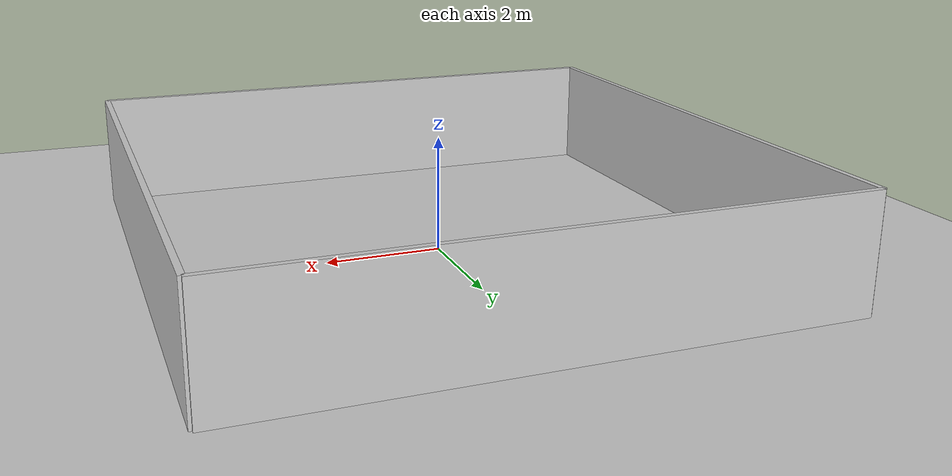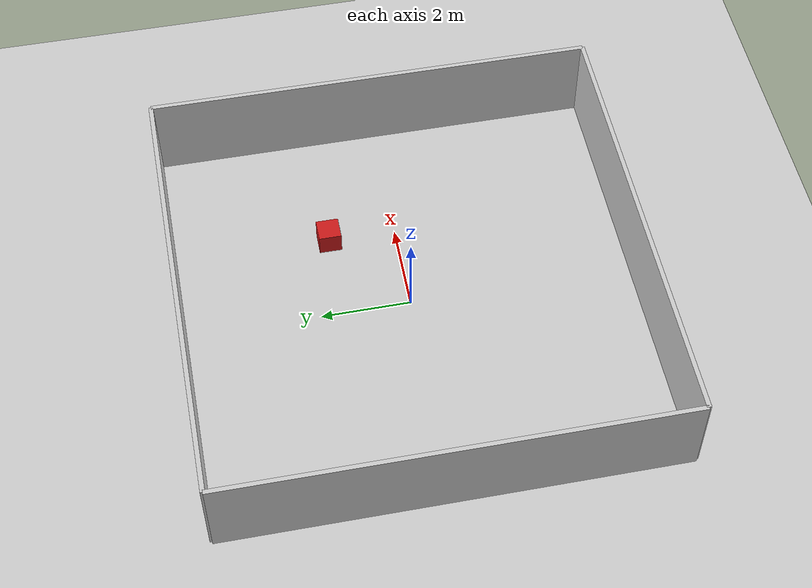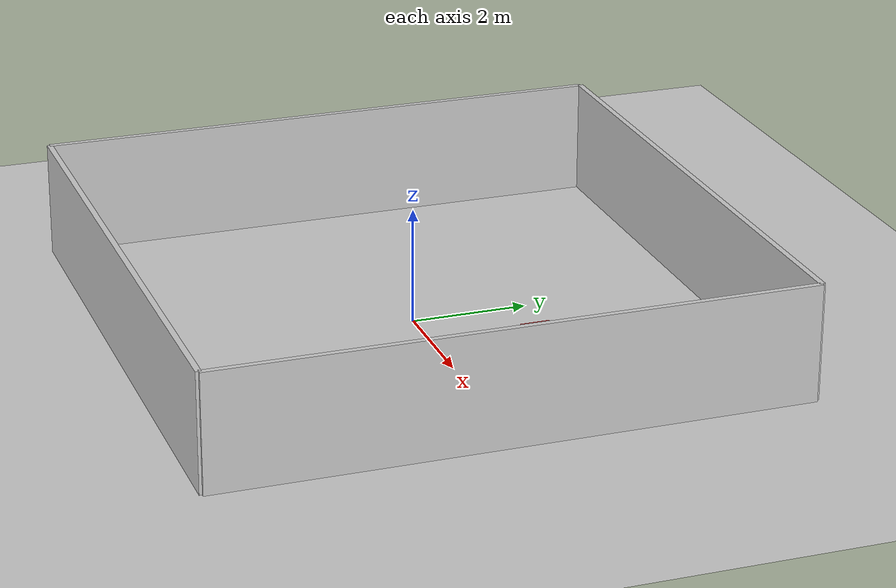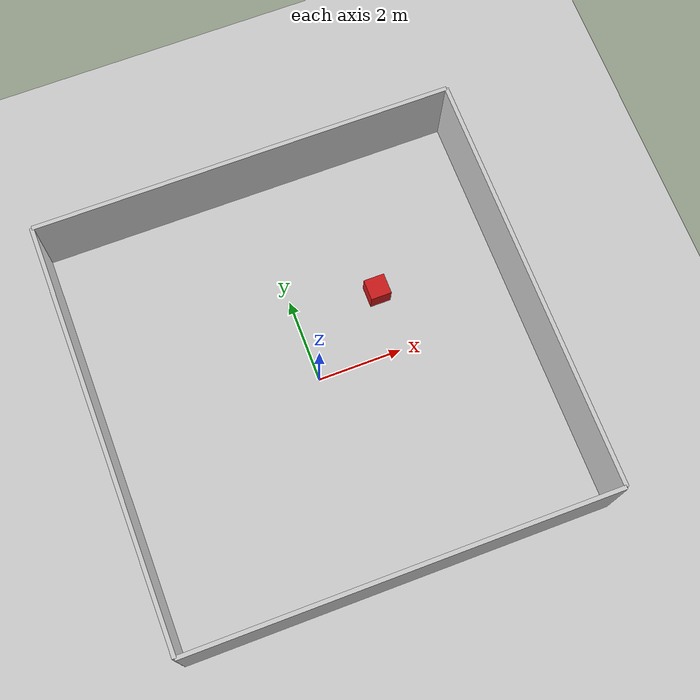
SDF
<?xml version="1.0" ?>
<sdf version="1.6">
  <world name="langnav_room">

    <!-- Physics -->
    <physics type="ode">
      <real_time_update_rate>1000.0</real_time_update_rate>
      <max_step_size>0.001</max_step_size>
      <real_time_factor>1</real_time_factor>
    </physics>

    <!-- Lighting -->
    <include>
      <uri>model://sun</uri>
    </include>

    <!-- Ground plane -->
    <include>
      <uri>model://ground_plane</uri>
    </include>

    <!-- Room walls (10m x 10m) -->
    <model name="wall_north">
      <static>true</static>
      <pose>0 5 1 0 0 0</pose>
      <link name="link">
        <collision name="collision">
          <geometry>
            <box><size>10 0.1 2</size></box>
          </geometry>
        </collision>
        <visual name="visual">
          <geometry>
            <box><size>10 0.1 2</size></box>
          </geometry>
          <material>
            <ambient>0.8 0.8 0.8 1</ambient>
          </material>
        </visual>
      </link>
    </model>

    <model name="wall_south">
      <static>true</static>
      <pose>0 -5 1 0 0 0</pose>
      <link name="link">
        <collision name="collision">
          <geometry>
            <box><size>10 0.1 2</size></box>
          </geometry>
        </collision>
        <visual name="visual">
          <geometry>
            <box><size>10 0.1 2</size></box>
          </geometry>
          <material>
            <ambient>0.8 0.8 0.8 1</ambient>
          </material>
        </visual>
      </link>
    </model>

    <model name="wall_east">
      <static>true</static>
      <pose>5 0 1 0 0 1.5708</pose>
      <link name="link">
        <collision name="collision">
          <geometry>
            <box><size>10 0.1 2</size></box>
          </geometry>
        </collision>
        <visual name="visual">
          <geometry>
            <box><size>10 0.1 2</size></box>
          </geometry>
          <material>
            <ambient>0.8 0.8 0.8 1</ambient>
          </material>
        </visual>
      </link>
    </model>

    <model name="wall_west">
      <static>true</static>
      <pose>-5 0 1 0 0 1.5708</pose>
      <link name="link">
        <collision name="collision">
          <geometry>
            <box><size>10 0.1 2</size></box>
          </geometry>
        </collision>
        <visual name="visual">
          <geometry>
            <box><size>10 0.1 2</size></box>
          </geometry>
          <material>
            <ambient>0.8 0.8 0.8 1</ambient>
          </material>
        </visual>
      </link>
    </model>

    <!-- Default objects (spawner overrides these at runtime) -->
    <model name="red_box_0">
      <pose>2.0 1.5 0.25 0 0 0</pose>
      <link name="link">
        <inertial>
          <mass>1.0</mass>
        </inertial>
        <collision name="collision">
          <geometry>
            <box><size>0.5 0.5 0.5</size></box>
          </geometry>
        </collision>
        <visual name="visual">
          <geometry>
            <box><size>0.5 0.5 0.5</size></box>
          </geometry>
          <material>
            <ambient>0.8 0.1 0.1 1</ambient>
            <diffuse>0.8 0.1 0.1 1</diffuse>
          </material>
        </visual>
      </link>
    </model>

    <!-- GUI -->
    <gui fullscreen="0">
      <camera name="user_camera">
        <pose>-8 0 5 0 0.5 0</pose>
        <view_controller>orbit</view_controller>
      </camera>
    </gui>

  </world>
</sdf>
